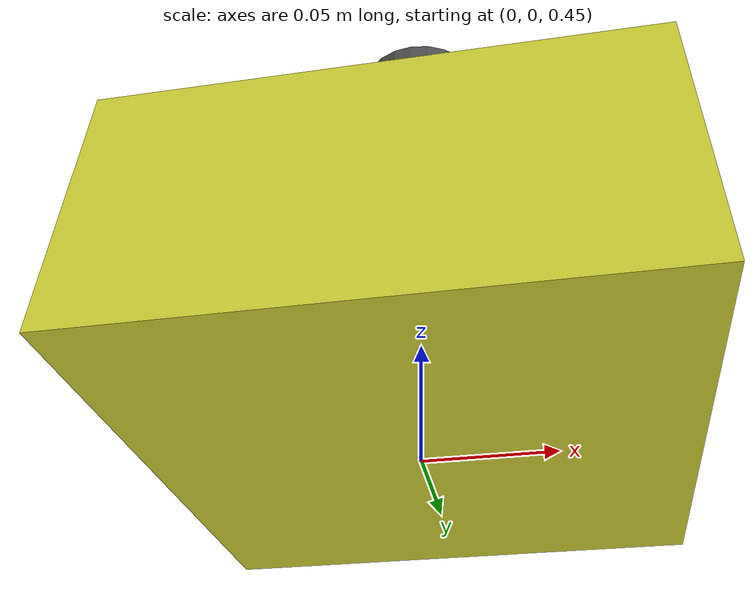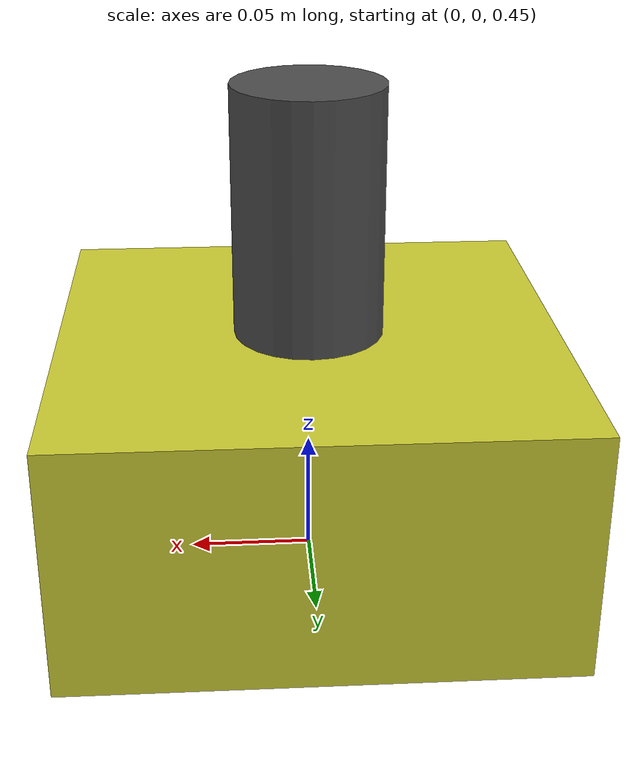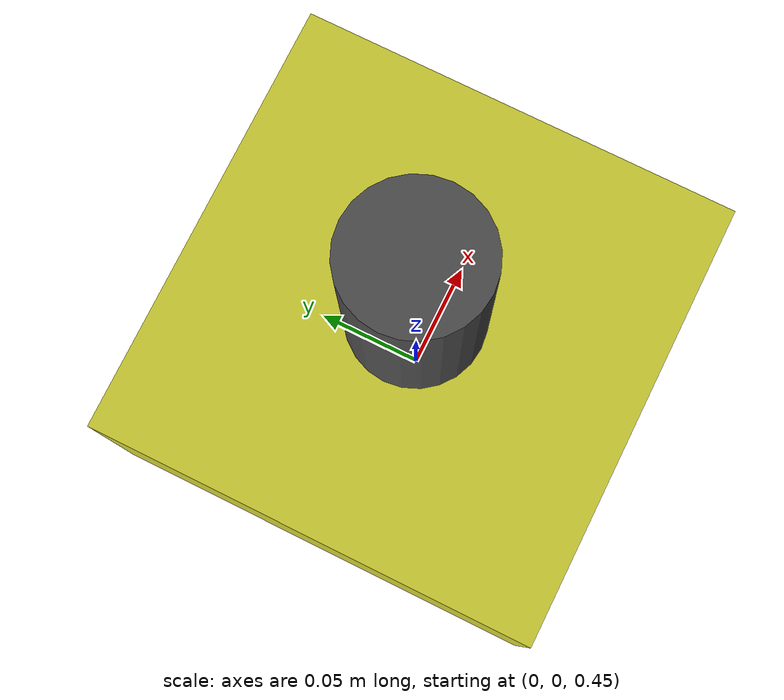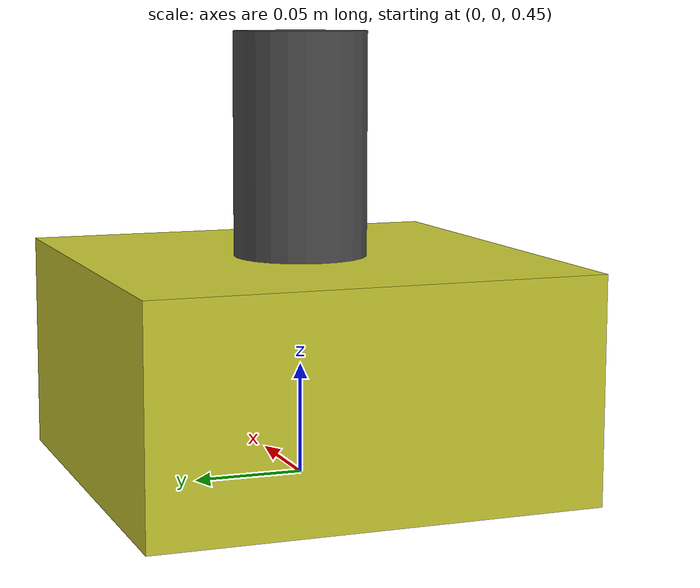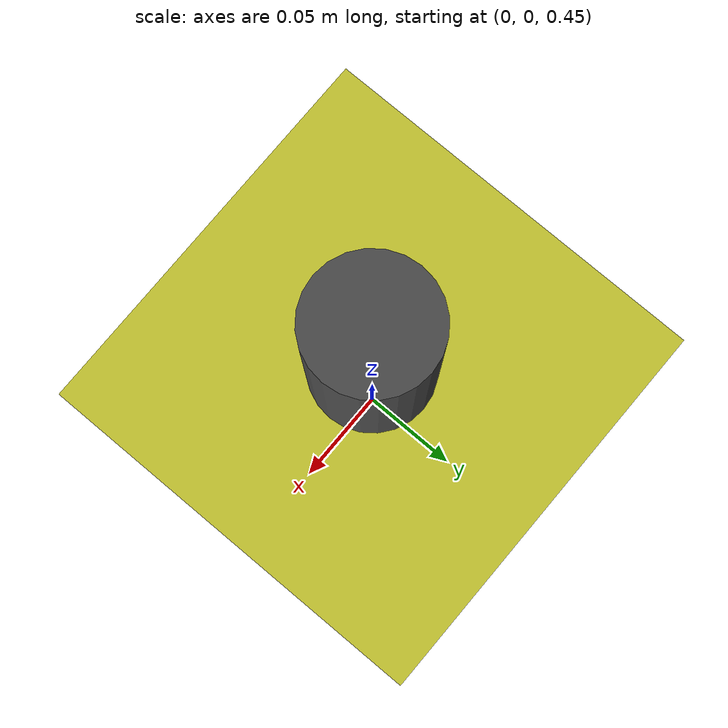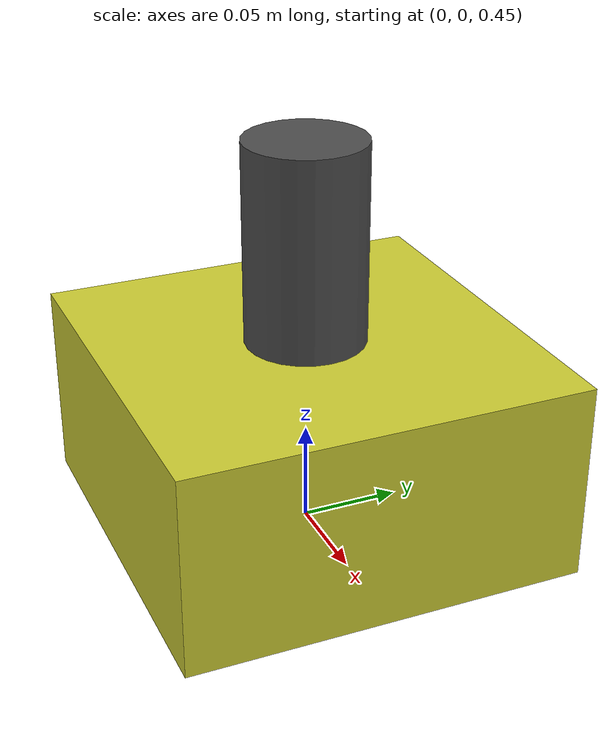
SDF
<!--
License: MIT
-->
<?xml version="1.0"?>
<sdf version="1.8">
  <model name="sensor_platform">
    <static>true</static>

    <!-- Base Platform Link -->
    <link name="base">
      <pose>0 0 0.5 0 0 0</pose>

      <inertial>
        <mass>1.0</mass>
        <inertia>
          <ixx>0.01</ixx>
          <ixy>0</ixy>
          <ixz>0</ixz>
          <iyy>0.01</iyy>
          <iyz>0</iyz>
          <izz>0.01</izz>
        </inertia>
      </inertial>

      <collision name="base_collision">
        <geometry>
          <box>
            <size>0.2 0.2 0.1</size>
          </box>
        </geometry>
      </collision>

      <visual name="base_visual">
        <geometry>
          <box>
            <size>0.2 0.2 0.1</size>
          </box>
        </geometry>
        <material>
          <ambient>0.8 0.8 0.2 1.0</ambient>
          <diffuse>0.8 0.8 0.2 1.0</diffuse>
        </material>
      </visual>
    </link>

    <!-- Sensor Mount Frame (for attaching sensors) -->
    <link name="sensor_mount">
      <pose>0 0 0.6 0 0 0</pose>

      <inertial>
        <mass>0.1</mass>
        <inertia>
          <ixx>0.001</ixx>
          <ixy>0</ixy>
          <ixz>0</ixz>
          <iyy>0.001</iyy>
          <iyz>0</iyz>
          <izz>0.001</izz>
        </inertia>
      </inertial>

      <collision name="mount_collision">
        <geometry>
          <cylinder>
            <radius>0.03</radius>
            <length>0.1</length>
          </cylinder>
        </geometry>
      </collision>

      <visual name="mount_visual">
        <geometry>
          <cylinder>
            <radius>0.03</radius>
            <length>0.1</length>
          </cylinder>
        </geometry>
        <material>
          <ambient>0.3 0.3 0.3 1.0</ambient>
          <diffuse>0.3 0.3 0.3 1.0</diffuse>
        </material>
      </visual>
    </link>

    <!-- Fixed Joint connecting base to sensor mount -->
    <joint name="mount_joint" type="fixed">
      <parent>base</parent>
      <child>sensor_mount</child>
    </joint>

  </model>
</sdf>
